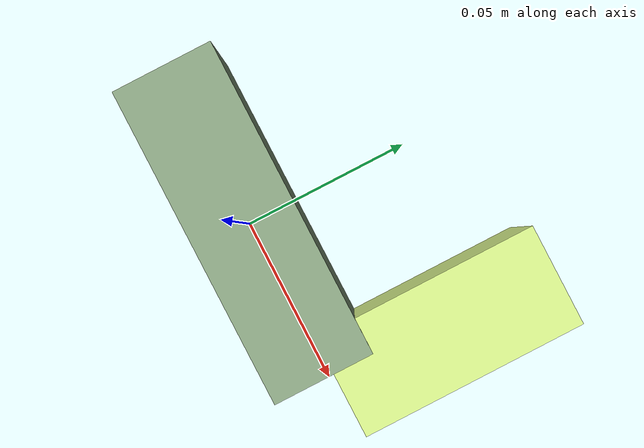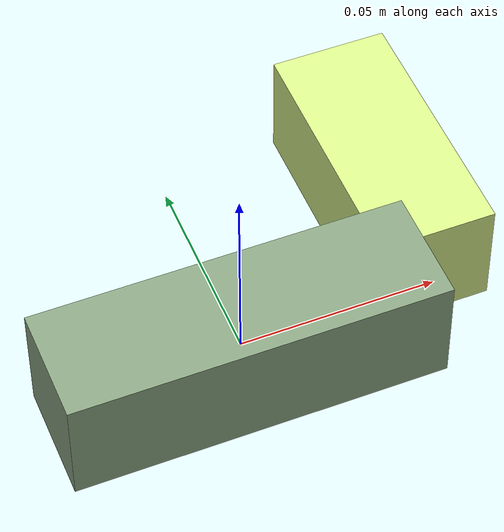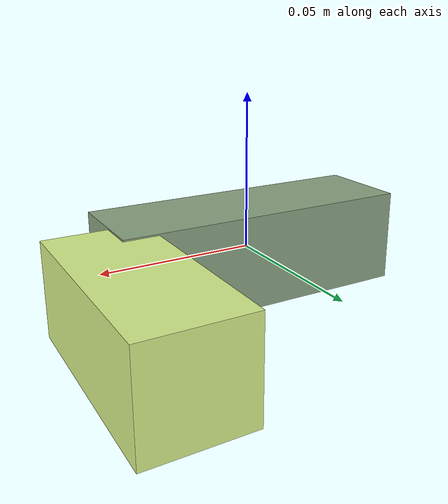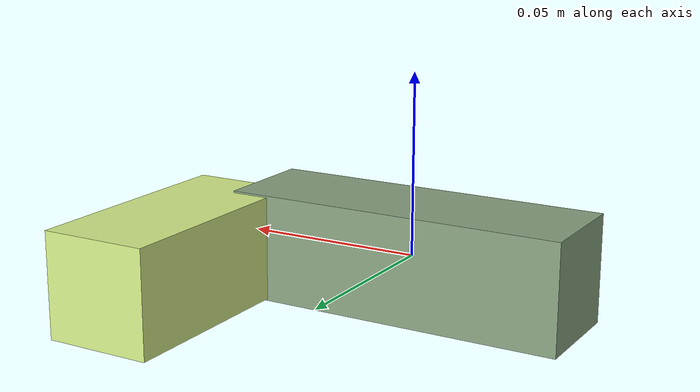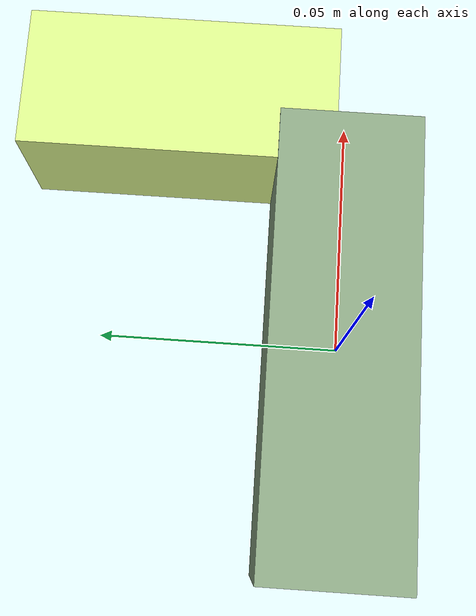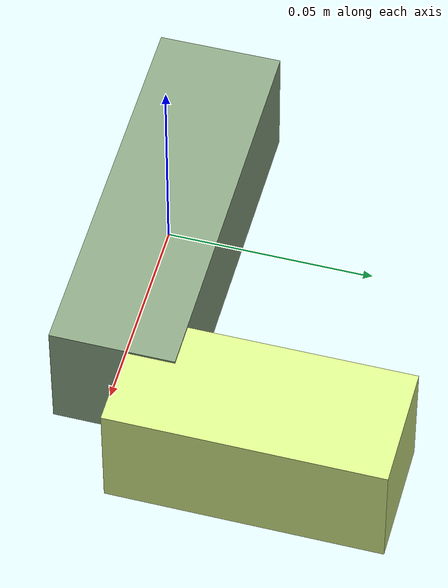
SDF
<sdf version="1.4"><world name="default"><model name="object0"><link name="link1"><pose>0 0 0 0 0 0</pose><inertial><pose>0 0 0 0 0 0</pose><mass>0.051540298605263796</mass><inertia><ixx>7.731044790789568e-06</ixx><ixy>0</ixy><iyy>4.2992114730046655e-05</iyy><ixz>0</ixz><iyz>0</iyz><izz>4.2992114730046655e-05</izz></inertia></inertial><visual name="link1_visual"><pose>0 0  0 0 0 0</pose><geometry><box><size>0.09544499741715519 0.03 0.03</size></box></geometry><material><diffuse>0.546508809917461 0.6513832753145643 0.5169862902676519 1</diffuse></material></visual><collision><pose>0 0  0 0 0 0</pose><geometry><box><size>0.09544499741715519 0.03 0.03</size></box></geometry></collision></link><link name="link2"><pose>0.051926788105553005 0.03618307184562966 0 0 0 0</pose><inertial><pose>0 0 0 0 0 0</pose><mass>0.035873201462819256</mass><inertia><ixx>1.5707055253572734e-05</ixx><ixy>0</ixy><iyy>5.204603645564027e-06</iyy><ixz>0</ixz><iyz>0</iyz><izz>1.5883431827431594e-05</izz></inertia></inertial><visual name="link2_visual"><pose>0 0  0 0 0 0</pose><geometry><box><size>0.03 0.0664318545607764 0.028999999999999998</size></box></geometry><material><diffuse>0.8477057236043377 0.9501472074141393 0.5462350368590787 1</diffuse></material></visual><collision><pose>0 0  0 0 0 0</pose><geometry><box><size>0.03 0.0664318545607764 0.028999999999999998</size></box></geometry></collision></link><joint name="link_joint_0" type="fixed"><parent>link1</parent><child>link2</child><pose>0 0 0 0 0 0</pose><axis><xyz>0 0 1</xyz></axis></joint></model></world></sdf>
